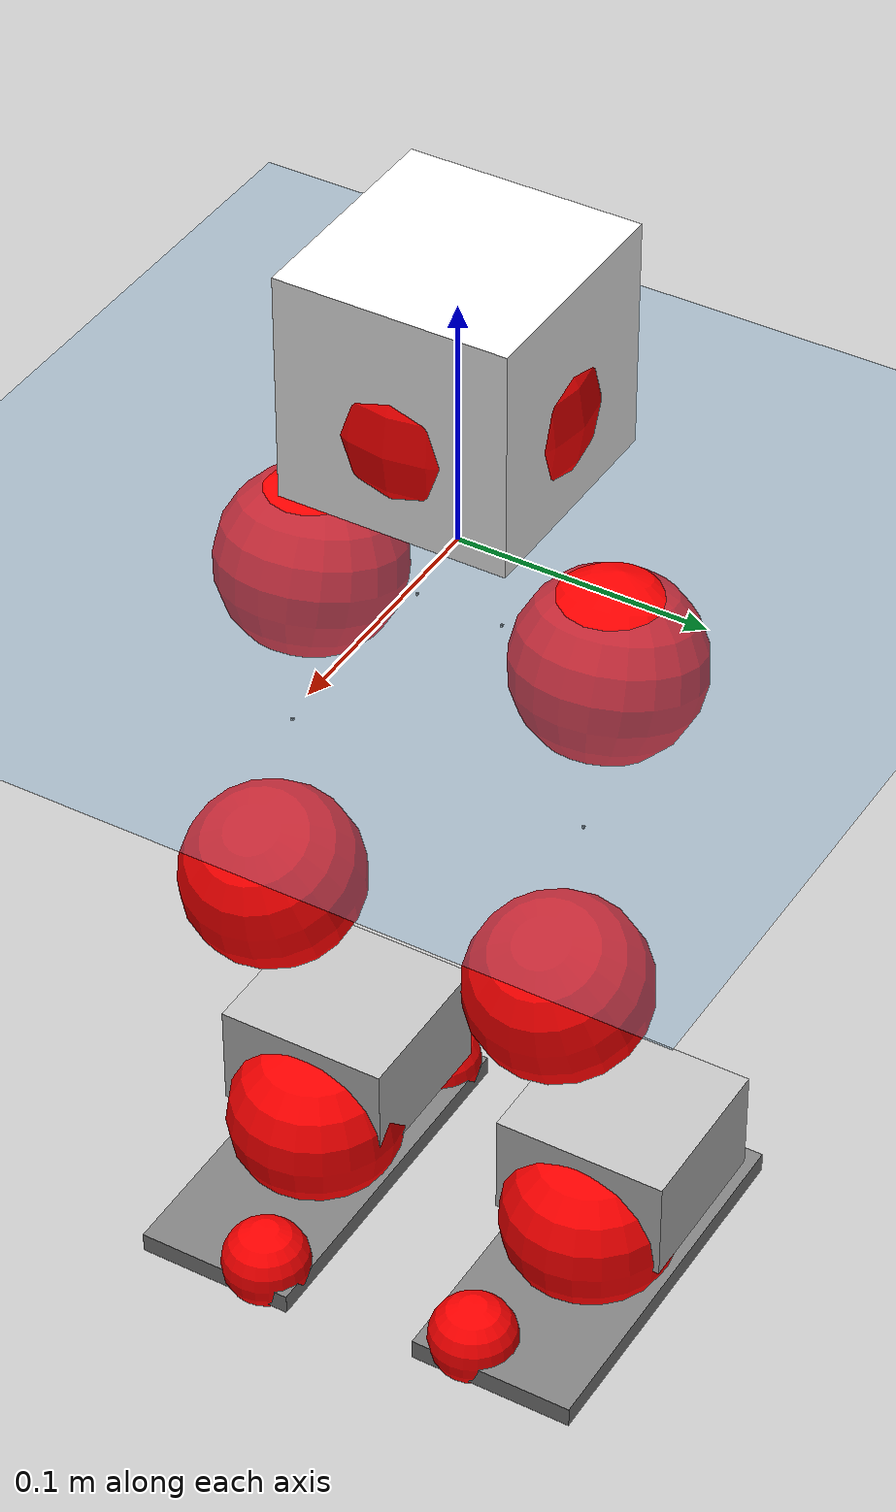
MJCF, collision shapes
<mujoco model="pi_12dof_release_v1">
  <compiler angle="radian" assetdir="assets" balanceinertia="true" inertiafromgeom="false"/>

  <option timestep="0.005" density="1.2" viscosity="2e-05"/>

  <size nkey="1"/>

  <visual>
    <quality shadowsize="8192"/>
    <map shadowclip="0.5"/>
  </visual>

  <default>
    <default class="/">
      <joint armature="0.01" damping="0.01" frictionloss="0.01"/>
      <geom contype="0" conaffinity="0" group="1" solref="-1000 -80"/>
      <site size="0.01 0.005 0.005" group="5"/>
      <general forcelimited="true" biastype="affine" gainprm="20" biasprm="0 -20 -0.5"/>
      <default class="foot">
        <geom size="0.0845 0.036 0.005" type="box" condim="6" group="4" priority="1" friction="0.9 0.2 0.2" solimp="0.015 1 0.005"/>
      </default>
      <default class="reward_collision_sphere">
        <geom group="5" rgba="1 0 0 1"/>
      </default>
    </default>
  </default>

  <asset>
    <texture type="skybox" colorspace="auto" name="//unnamed_texture_0" builtin="gradient" rgb1="0.95 0.95 0.95" rgb2="0.95 0.95 0.95" width="100" height="600"/>
    <texture type="2d" colorspace="auto" name="texplane" builtin="checker" rgb1="0.345 0.575 0.748" rgb2="0.345 0.575 0.748" markrgb="1 1 1" width="512" height="512"/>
    <material name="MatPlane" class="/" texture="texplane" texuniform="true" texrepeat="2 2" specular="0.9"/>
    <mesh name="baselink_1" class="/" file="baselink_1.STL"/>
    <mesh name="r_hip_pitch_link" class="/" file="r_hip_pitch_link.STL"/>
    <mesh name="r_hip_roll_link" class="/" file="r_hip_roll_link.STL"/>
    <mesh name="r_thigh_link" class="/" file="r_thigh_link.STL"/>
    <mesh name="r_calf_link" class="/" file="r_calf_link.STL"/>
    <mesh name="r_ankle_pitch_link" class="/" file="r_ankle_pitch_link.STL"/>
    <mesh name="r_ankle_roll_link" class="/" file="r_ankle_roll_link.STL"/>
    <mesh name="l_hip_pitch_link" class="/" file="l_hip_pitch_link.STL"/>
    <mesh name="l_hip_roll_link" class="/" file="l_hip_roll_link.STL"/>
    <mesh name="l_thigh_link" class="/" file="l_thigh_link.STL"/>
    <mesh name="l_calf_link" class="/" file="l_calf_link.STL"/>
    <mesh name="l_ankle_pitch_link" class="/" file="l_ankle_pitch_link.STL"/>
    <mesh name="l_ankle_roll_link" class="/" file="l_ankle_roll_link.STL"/>
  </asset>

  <worldbody>
    <geom name="floor" class="/" size="100 100 0.125" type="plane" group="0" material="MatPlane"/>
    <light name="toplight_shadow" class="/" pos="0 0 5" dir="0.0990148 0.0990148 -0.990148" type="directional" ambient="0.04 0.04 0.04" diffuse="0.55 0.55 0.55" specular="0.12 0.12 0.12"/>
    <light name="toplight_fill" class="/" pos="0 0 5" dir="0.0990148 0.0990148 -0.990148" type="directional" castshadow="false" ambient="0.04 0.04 0.04" diffuse="0.3 0.3 0.3" specular="0.08 0.08 0.08"/>
    <body name="trunk" pos="-8.40507e-05 -1.25081e-05 0.000214016" quat="1 -6.54921e-05 -0.000100009 0.000109694">
      <inertial pos="0.00244847 0.000609283 0.0390874" quat="0.695324 0.00968878 0.00942553 0.718569" mass="1.6612" diaginertia="0.00898743 0.00291421 0.00344686"/>
      <joint name="//unnamed_joint_0" type="free"/>
      <geom name="//unnamed_geom_1" class="/" type="mesh" density="0" rgba="1 1 1 1" mesh="baselink_1"/>
      <geom name="//unnamed_geom_2" class="/" size="0.0455693 0.0455693 0.0455693" pos="0 0 0.0768015" type="box" rgba="1 1 1 1"/>
      <geom name="//unnamed_geom_3" class="reward_collision_sphere" size="0.0501262" pos="0 0 0.0672013"/>
      <site name="imu" class="/" pos="-0.00359212 0.00442616 -0.00416993" size="0.00911386"/>
      <camera name="track" class="/" pos="0 -1.59095 0" quat="0.707107 0.707107 0 0" mode="trackcom"/>
      <camera name="ego_camera" class="/" pos="0.0733999 0 0.172803" quat="-0.5 -0.5 0.5 0.5"/>
      <body name="r_hip_pitch_link" pos="-0.00031784 -0.0171469 -0.0320432" quat="0.992212 0.000182359 -0.124561 -2.95043e-05">
        <inertial pos="0.000378825 -0.0452034 0.00107646" quat="-0.017958 0.707327 -0.0297752 0.706031" mass="0.282185" diaginertia="9.79271e-05 3.17533e-05 6.7376e-05"/>
        <joint name="r_hip_pitch_joint" class="/" pos="0 0 0" axis="-0.00286575 -0.999937 0.0108317" range="-1.75948 1.25791" armature="0.00948283" damping="0.0139108" frictionloss="0.00909739"/>
        <geom name="//unnamed_geom_4" class="/" type="mesh" density="0" rgba="0.75294 0.75294 0.75294 1" mesh="r_hip_pitch_link"/>
        <geom name="//unnamed_geom_5" class="/" size="0.000455693 0.000455693 0.000455693" type="box" rgba="0.75294 0.75294 0.75294 1"/>
        <body name="r_hip_roll_link" pos="0.000572475 -0.0443242 -0.00086111" quat="1 4.77572e-05 4.55159e-05 6.7675e-05">
          <inertial pos="-0.0012698 -0.000219013 -0.0583967" quat="0.706078 -0.0782331 -0.0816942 0.699042" mass="0.290202" diaginertia="0.000301347 8.77547e-05 0.000101282"/>
          <joint name="r_hip_roll_joint" class="/" pos="0 0 0" axis="-0.999999 -0.00143028 -0.00029121" range="-0.120054 0.490541" armature="0.00887541" damping="0.00374098" frictionloss="0.00873321"/>
          <geom name="//unnamed_geom_6" class="/" type="mesh" density="0" rgba="0.75294 0.75294 0.75294 1" mesh="r_hip_roll_link"/>
          <geom name="//unnamed_geom_7" class="/" size="0.000455693 0.000455693 0.000455693" type="box" rgba="0.75294 0.75294 0.75294 1"/>
          <geom name="//unnamed_geom_8" class="reward_collision_sphere" size="0.0364554"/>
          <body name="r_thigh_link" pos="0.000648387 0.000632802 -0.0658595" quat="1 0.000419987 -0.000313348 -0.000172378">
            <inertial pos="0.000393508 0.000820547 -0.0453015" quat="0.737361 0.675498 -9.67879e-05 0.000300618" mass="0.0861915" diaginertia="0.000112357 2.97834e-05 4.7289e-05"/>
            <joint name="r_thigh_joint" class="/" pos="0 0 0" axis="-0.00127197 0.00238129 -0.999996" stiffness="0.000126605" range="-0.304796 0.594813" armature="0.0093382" damping="0.0031658" frictionloss="0.00905044"/>
            <geom name="//unnamed_geom_9" class="/" type="mesh" density="0" rgba="0.75294 0.75294 0.75294 1" mesh="r_thigh_link"/>
            <geom name="//unnamed_geom_10" class="/" size="0.000455693 0.000455693 0.000455693" type="box" rgba="0.75294 0.75294 0.75294 1"/>
            <body name="r_calf_link" pos="-0.00100103 -0.000691757 -0.0670484" quat="0.947614 0.000116669 0.319416 -0.000202349">
              <inertial pos="-8.62587e-05 -0.000676096 -0.0673583" quat="0.999986 -0.00371101 -4.14761e-05 0.00388039" mass="0.604481" diaginertia="0.00311739 0.00111386 0.000142401"/>
              <joint name="r_calf_joint" class="/" pos="0 0 0" axis="0.00550339 -0.999979 -0.00348695" range="-1.63146 0.645043" armature="0.00903259" damping="0.00775728" frictionloss="0.00927799"/>
              <geom name="//unnamed_geom_11" class="/" type="mesh" density="0" rgba="0.75294 0.75294 0.75294 1" mesh="r_calf_link"/>
              <geom name="//unnamed_geom_12" class="/" size="0.000455693 0.000455693 0.000455693" type="box" rgba="0.75294 0.75294 0.75294 1"/>
              <geom name="//unnamed_geom_13" class="reward_collision_sphere" size="0.0364554"/>
              <body name="r_ankle_pitch_link" pos="0.00256259 -2.73184e-05 -0.134604" quat="0.980121 -0.000123994 -0.198399 -7.11503e-05">
                <inertial pos="0.0049729 0.00233998 -0.000215975" quat="0.00292126 0.707139 -0.00305427 0.707062" mass="0.137863" diaginertia="0.000278137 7.31265e-05 0.000100317"/>
                <joint name="r_ankle_pitch_joint" class="/" pos="0 0 0" axis="0.0054032 -0.999983 0.00220626" range="-1.28775 0.481455" armature="0.00920562" damping="0.0148701" frictionloss="0.00941117"/>
                <geom name="//unnamed_geom_14" class="/" type="mesh" density="0" rgba="0.75294 0.75294 0.75294 1" mesh="r_ankle_pitch_link"/>
                <geom name="//unnamed_geom_15" class="/" size="0.035544 0.0364554 0.0227846" type="box" rgba="0.75294 0.75294 0.75294 1"/>
                <body name="r_ankle_roll_link" pos="0.0766413 0.00187476 -0.000629333" quat="1 0.000165224 -9.32436e-05 1.09357e-05">
                  <inertial pos="-0.0224987 -3.20333e-05 -0.0123283" quat="0.558901 0.431609 0.435406 0.558359" mass="0.383922" diaginertia="0.00100875 0.000330641 0.000232485"/>
                  <joint name="r_ankle_roll_joint" class="/" pos="0 0 0" axis="-0.999999 -0.000355204 0.000935741" range="-0.140938 0.141702" armature="0.00915321" damping="0.00626204" frictionloss="0.00992889"/>
                  <geom name="//unnamed_geom_16" class="/" type="mesh" density="0" rgba="0.75294 0.75294 0.75294 1" mesh="r_ankle_roll_link"/>
                  <geom name="//unnamed_geom_17" class="/" type="mesh" rgba="0.75294 0.75294 0.75294 1" mesh="r_ankle_roll_link"/>
                  <geom name="right_foot" class="foot" size="0.0779467 0.0333897 0.00428922" pos="-0.0499119 0 -0.0422408"/>
                  <geom name="//unnamed_geom_19" class="reward_collision_sphere" size="0.0364554" pos="-0.0489333 0 -0.0192004"/>
                  <geom name="//unnamed_geom_20" class="reward_collision_sphere" size="0.0182277" pos="0.01468 0.0159095 -0.0384007"/>
                  <geom name="//unnamed_geom_21" class="reward_collision_sphere" size="0.0182277" pos="-0.11744 0.0159095 -0.0384007"/>
                  <site name="right_foot" class="foot" pos="-0.0499119 0 -0.0422408" size="0.00911386"/>
                </body>
              </body>
            </body>
          </body>
        </body>
      </body>
      <body name="l_hip_pitch_link" pos="0.000518352 0.0185684 -0.0313879" quat="0.992202 -9.76785e-05 -0.124642 -2.37843e-05">
        <inertial pos="0.00188655 0.0419598 4.25503e-05" quat="-0.0396973 0.709404 0.0208887 0.703373" mass="0.287563" diaginertia="0.000114148 3.324e-05 8.30764e-05"/>
        <joint name="l_hip_pitch_joint" class="/" pos="0 0 0" axis="0.00182975 0.999995 0.00244138" range="-1.24014 1.73018" armature="0.00879376" damping="0.00592918" frictionloss="0.00885977"/>
        <geom name="//unnamed_geom_22" class="/" type="mesh" density="0" rgba="0.75294 0.75294 0.75294 1" mesh="l_hip_pitch_link"/>
        <geom name="//unnamed_geom_23" class="/" size="0.000455693 0.000455693 0.000455693" type="box" rgba="0.75294 0.75294 0.75294 1"/>
        <body name="l_hip_roll_link" pos="8.62285e-05 0.0435982 0.000324462" quat="1 0.000491096 -0.000171299 -7.87898e-06">
          <inertial pos="-0.00169913 0.000244149 -0.0589569" quat="0.696399 -0.0740101 -0.077201 0.709642" mass="0.2974" diaginertia="0.0003024 9.08194e-05 0.000105175"/>
          <joint name="l_hip_roll_joint" class="/" pos="0 0 0" axis="-0.999983 0.000108434 0.00575168" range="-0.462923 0.0892623" armature="0.00916179" damping="0.00335738" frictionloss="0.00929041"/>
          <geom name="//unnamed_geom_24" class="/" type="mesh" density="0" rgba="0.75294 0.75294 0.75294 1" mesh="l_hip_roll_link"/>
          <geom name="//unnamed_geom_25" class="/" size="0.000455693 0.000455693 0.000455693" type="box" rgba="0.75294 0.75294 0.75294 1"/>
          <geom name="//unnamed_geom_26" class="reward_collision_sphere" size="0.0364554"/>
          <body name="l_thigh_link" pos="-0.000425745 8.38352e-05 -0.0663312" quat="1 -0.000187844 0.000198364 0.000126782">
            <inertial pos="0.000832433 -0.000711206 -0.0456611" quat="0.675378 0.737472 1.75199e-05 3.67432e-05" mass="0.0864804" diaginertia="0.000115822 3.13583e-05 4.96528e-05"/>
            <joint name="l_thigh_joint" class="/" pos="0 0 0" axis="0.000206631 0.000497318 -1" range="-0.604569 0.283186" armature="0.00943401" damping="0.00511639" frictionloss="0.00920486"/>
            <geom name="//unnamed_geom_27" class="/" type="mesh" density="0" rgba="0.75294 0.75294 0.75294 1" mesh="l_thigh_link"/>
            <geom name="//unnamed_geom_28" class="/" size="0.000455693 0.000455693 0.000455693" type="box" rgba="0.75294 0.75294 0.75294 1"/>
            <body name="l_calf_link" pos="-0.000263248 0.000157994 -0.0674238" quat="0.947727 0.000157515 0.319082 0.000265724">
              <inertial pos="0.000830623 0.00138483 -0.066393" quat="0.999951 0.00967444 0.000982216 -0.00176853" mass="0.62187" diaginertia="0.00315542 0.00113537 0.000143264"/>
              <joint name="l_calf_joint" class="/" pos="0 0 0" axis="0.000187797 0.999999 0.00143851" range="-0.648777 1.67248" armature="0.00918525" damping="0.006912" frictionloss="0.00937794"/>
              <geom name="//unnamed_geom_29" class="/" type="mesh" density="0" rgba="0.75294 0.75294 0.75294 1" mesh="l_calf_link"/>
              <geom name="//unnamed_geom_30" class="/" size="0.000455693 0.000455693 0.000455693" type="box" rgba="0.75294 0.75294 0.75294 1"/>
              <geom name="//unnamed_geom_31" class="reward_collision_sphere" size="0.0364554"/>
              <body name="l_ankle_pitch_link" pos="0.000603068 0.000812548 -0.136375" quat="0.980056 -7.03363e-05 -0.19872 0.000295565">
                <inertial pos="0.00485346 0.00120965 -0.000989554" quat="-0.00180301 0.706639 0.0031606 0.707565" mass="0.129985" diaginertia="0.000269785 6.91996e-05 9.49162e-05"/>
                <joint name="l_ankle_pitch_joint" class="/" pos="0 0 0" axis="0.00364594 0.999975 0.00600942" range="-0.496336 1.29964" armature="0.00900888" damping="0" frictionloss="0.0090916"/>
                <geom name="//unnamed_geom_32" class="/" type="mesh" density="0" rgba="0.75294 0.75294 0.75294 1" mesh="l_ankle_pitch_link"/>
                <geom name="//unnamed_geom_33" class="/" size="0.035544 0.0364554 0.0227846" type="box" rgba="0.75294 0.75294 0.75294 1"/>
                <body name="l_ankle_roll_link" pos="0.0729867 -0.000263649 -0.000100602" quat="1 -3.72007e-06 -2.03591e-05 -3.37186e-05">
                  <inertial pos="-0.0246322 -0.000259372 -0.0139139" quat="0.56133 0.43412 0.427435 0.560131" mass="0.391919" diaginertia="0.00103281 0.000334502 0.000239479"/>
                  <joint name="l_ankle_roll_joint" class="/" pos="0 0 0" axis="-0.999949 0.00569744 0.00836326" range="-0.155282 0.112347" armature="0.00908875" damping="0.0105197" frictionloss="0.0082574"/>
                  <geom name="//unnamed_geom_34" class="/" type="mesh" density="0" rgba="0.75294 0.75294 0.75294 1" mesh="l_ankle_roll_link"/>
                  <geom name="//unnamed_geom_35" class="/" type="mesh" rgba="0.75294 0.75294 0.75294 1" mesh="l_ankle_roll_link"/>
                  <geom name="left_foot" class="foot" size="0.0792871 0.034782 0.00444986" pos="-0.0499119 0 -0.0422408"/>
                  <geom name="//unnamed_geom_37" class="reward_collision_sphere" size="0.0364554" pos="-0.0489333 0 -0.0192004"/>
                  <geom name="//unnamed_geom_38" class="reward_collision_sphere" size="0.0182277" pos="0.01468 -0.0159095 -0.0384007"/>
                  <geom name="//unnamed_geom_39" class="reward_collision_sphere" size="0.0182277" pos="-0.11744 -0.0159095 -0.0384007"/>
                  <site name="left_foot" class="foot" pos="-0.0499119 0 -0.0422408" size="0.00911386"/>
                </body>
              </body>
            </body>
          </body>
        </body>
      </body>
    </body>
  </worldbody>

  <contact>
    <pair class="/" geom1="floor" geom2="right_foot" name="//unnamed_contact_1"/>
    <pair class="/" geom1="floor" geom2="left_foot" name="//unnamed_contact_0"/>
  </contact>

  <actuator>
    <general name="r_hip_pitch_joint" class="/" joint="r_hip_pitch_joint" forcerange="-19.3308 19.3308" gainprm="18.7026" biasprm="0 -18.7026 -0.447725"/>
    <general name="r_hip_roll_joint" class="/" joint="r_hip_roll_joint" forcerange="-19.0748 19.0748" gainprm="18.7026" biasprm="0 -18.7026 -0.447725"/>
    <general name="r_thigh_joint" class="/" joint="r_thigh_joint" forcerange="-19.6751 19.6751" gainprm="18.7026" biasprm="0 -18.7026 -0.447725"/>
    <general name="r_calf_joint" class="/" joint="r_calf_joint" forcerange="-18.6497 18.6497" gainprm="18.7026" biasprm="0 -18.7026 -0.447725"/>
    <general name="r_ankle_pitch_joint" class="/" joint="r_ankle_pitch_joint" forcerange="-18.6901 18.6901" gainprm="18.7026" biasprm="0 -18.7026 -0.447725"/>
    <general name="r_ankle_roll_joint" class="/" joint="r_ankle_roll_joint" forcerange="-19.898 19.898" gainprm="18.7026" biasprm="0 -18.7026 -0.447725"/>
    <general name="l_hip_pitch_joint" class="/" joint="l_hip_pitch_joint" forcerange="-19.7952 19.7952" gainprm="18.7026" biasprm="0 -18.7026 -0.447725"/>
    <general name="l_hip_roll_joint" class="/" joint="l_hip_roll_joint" forcerange="-17.8352 17.8352" gainprm="18.7026" biasprm="0 -18.7026 -0.447725"/>
    <general name="l_thigh_joint" class="/" joint="l_thigh_joint" forcerange="-19.029 19.029" gainprm="18.7026" biasprm="0 -18.7026 -0.447725"/>
    <general name="l_calf_joint" class="/" joint="l_calf_joint" forcerange="-19.4487 19.4487" gainprm="18.7026" biasprm="0 -18.7026 -0.447725"/>
    <general name="l_ankle_pitch_joint" class="/" joint="l_ankle_pitch_joint" forcerange="-18.6419 18.6419" gainprm="18.7026" biasprm="0 -18.7026 -0.447725"/>
    <general name="l_ankle_roll_joint" class="/" joint="l_ankle_roll_joint" forcerange="-19.8328 19.8328" gainprm="18.7026" biasprm="0 -18.7026 -0.447725"/>
  </actuator>

  <sensor>
    <gyro site="imu" name="imu_angular_velocity"/>
    <velocimeter site="imu" name="imu_linear_velocity"/>
    <framelinvel objtype="site" objname="left_foot" name="left_foot_global_linear_velocity"/>
    <framelinvel objtype="site" objname="right_foot" name="right_foot_global_linear_velocity"/>
  </sensor>

  <keyframe>
    <key name="home" qpos="0 0 0.291 1 0 0 0 0.4 0 0 -0.8 0.4 0 -0.4 0 0 0.8 -0.4 0"/>
  </keyframe>
</mujoco>
